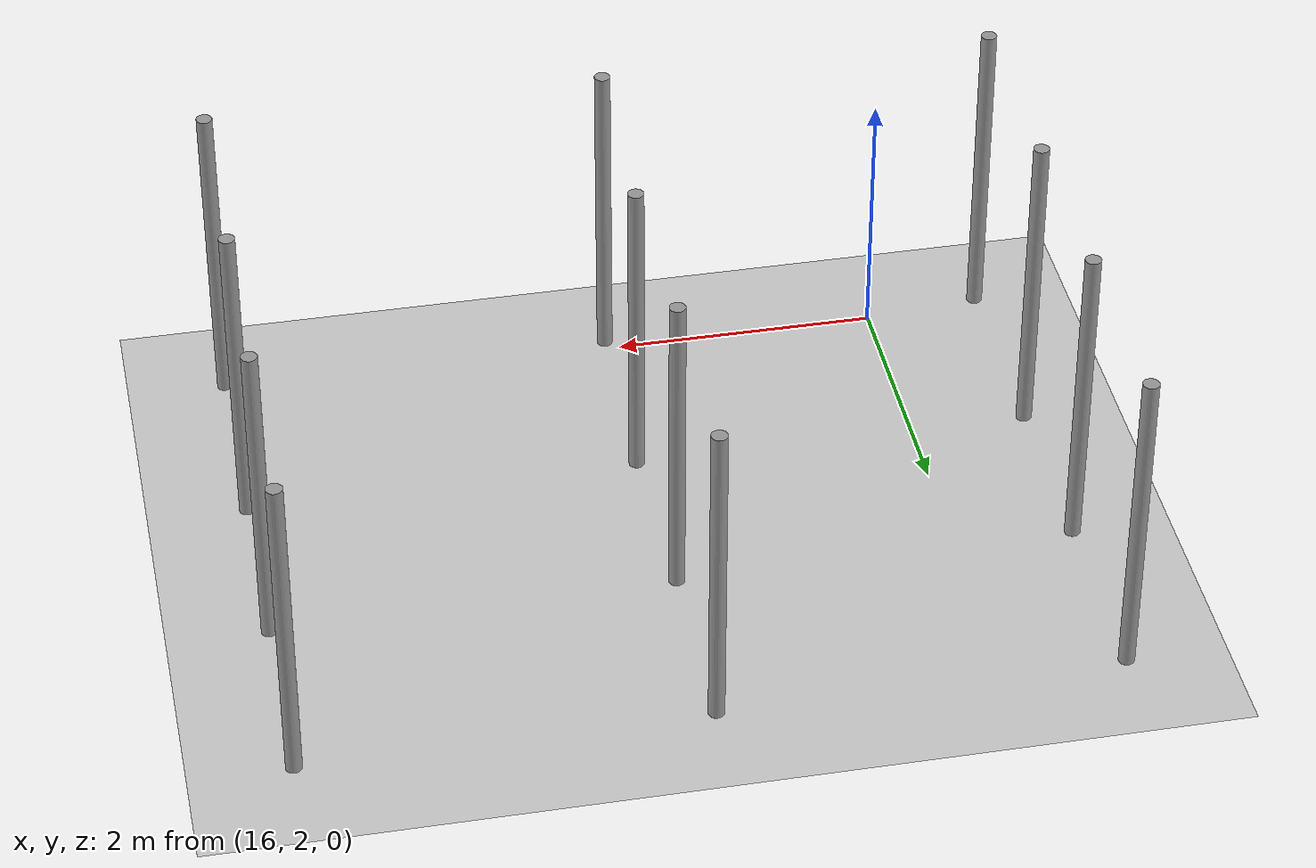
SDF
<sdf version="1.6">
 <world name="default">
  <model name="ground_plane">
   <static>1</static>
   <link name="link">
    <collision name="collision">
     <geometry><plane><normal>0 0 1</normal><size>100 100</size></plane></geometry>
     <surface><friction><ode><mu>100</mu><mu2>50</mu2></ode></friction></surface>
    </collision>
    <visual name="visual">
     <cast_shadows>0</cast_shadows>
     <geometry><plane><normal>0 0 1</normal><size>100 100</size></plane></geometry>
     <material>
      <script><uri>file://media/materials/scripts/gazebo.material</uri><name>Gazebo/Grey</name></script>
     </material>
    </visual>
   </link>
  </model>
  <model name="pole_11">
   <link name="link_0">
    <inertial>
     <mass>0.0364582</mass>
     <inertia>
      <ixx>0.00312124</ixx>
      <ixy>0</ixy>
      <ixz>0</ixz>
      <iyy>0.00312124</iyy>
      <iyz>0</iyz>
      <izz>0.00016615</izz>
     </inertia>
    </inertial>
    <visual name="visual">
     <geometry><cylinder><radius>0.06</radius><length>2.5</length></cylinder></geometry>
     <material>
      <lighting>1</lighting>
      <script><uri>file://media/materials/scripts/gazebo.material</uri><name>Gazebo/Grey</name></script>
      <ambient>0.3 0.3 0.3 1</ambient>
      <diffuse>0.7 0.7 0.7 1</diffuse>
      <specular>0.01 0.01 0.01 1</specular>
      <emissive>0 0 0 1</emissive>
      <shader type="vertex"><normal_map>__default__</normal_map></shader>
     </material>
    </visual>
    <collision name="collision">
     <geometry><cylinder><radius>0.06</radius><length>2.5</length></cylinder></geometry>
     <surface>
      <friction>
       <ode><mu>1</mu><mu2>1</mu2><fdir1>0 0 0</fdir1><slip1>0</slip1><slip2>0</slip2></ode>
       <torsional>
        <coefficient>1</coefficient>
        <patch_radius>0</patch_radius>
        <surface_radius>0</surface_radius>
        <use_patch_radius>1</use_patch_radius>
        <ode><slip>0</slip></ode>
       </torsional>
      </friction>
      <bounce><restitution_coefficient>0</restitution_coefficient><threshold>1e+06</threshold></bounce>
      <contact>
       <collide_without_contact>0</collide_without_contact>
       <collide_without_contact_bitmask>1</collide_without_contact_bitmask>
       <collide_bitmask>1</collide_bitmask>
       <ode>
        <soft_cfm>0</soft_cfm>
        <soft_erp>0.2</soft_erp>
        <kp>1e+13</kp>
        <kd>1</kd>
        <max_vel>0.01</max_vel>
        <min_depth>0</min_depth>
       </ode>
       <bullet>
        <split_impulse>1</split_impulse>
        <split_impulse_penetration_threshold>-0.01</split_impulse_penetration_threshold>
        <soft_cfm>0</soft_cfm>
        <soft_erp>0.2</soft_erp>
        <kp>1e+13</kp>
        <kd>1</kd>
       </bullet>
      </contact>
     </surface>
    </collision>
   </link>
   <static>0</static>
   <pose>15.1065 1.89884 1.24999 -1e-06 -1e-06 -0.019088</pose>
  </model>
  <model name="pole_12">
   <link name="link_0">
    <inertial>
     <mass>0.0364582</mass>
     <inertia>
      <ixx>0.00312124</ixx>
      <ixy>0</ixy>
      <ixz>0</ixz>
      <iyy>0.00312124</iyy>
      <iyz>0</iyz>
      <izz>0.00016615</izz>
     </inertia>
    </inertial>
    <visual name="visual">
     <geometry><cylinder><radius>0.06</radius><length>2.5</length></cylinder></geometry>
     <material>
      <lighting>1</lighting>
      <script><uri>file://media/materials/scripts/gazebo.material</uri><name>Gazebo/Grey</name></script>
      <ambient>0.3 0.3 0.3 1</ambient>
      <diffuse>0.7 0.7 0.7 1</diffuse>
      <specular>0.01 0.01 0.01 1</specular>
      <emissive>0 0 0 1</emissive>
      <shader type="vertex"><normal_map>__default__</normal_map></shader>
     </material>
    </visual>
    <collision name="collision">
     <geometry><cylinder><radius>0.06</radius><length>2.5</length></cylinder></geometry>
     <surface>
      <friction>
       <ode><mu>1</mu><mu2>1</mu2><fdir1>0 0 0</fdir1><slip1>0</slip1><slip2>0</slip2></ode>
       <torsional>
        <coefficient>1</coefficient>
        <patch_radius>0</patch_radius>
        <surface_radius>0</surface_radius>
        <use_patch_radius>1</use_patch_radius>
        <ode><slip>0</slip></ode>
       </torsional>
      </friction>
      <bounce><restitution_coefficient>0</restitution_coefficient><threshold>1e+06</threshold></bounce>
      <contact>
       <collide_without_contact>0</collide_without_contact>
       <collide_without_contact_bitmask>1</collide_without_contact_bitmask>
       <collide_bitmask>1</collide_bitmask>
       <ode>
        <soft_cfm>0</soft_cfm>
        <soft_erp>0.2</soft_erp>
        <kp>1e+13</kp>
        <kd>1</kd>
        <max_vel>0.01</max_vel>
        <min_depth>0</min_depth>
       </ode>
       <bullet>
        <split_impulse>1</split_impulse>
        <split_impulse_penetration_threshold>-0.01</split_impulse_penetration_threshold>
        <soft_cfm>0</soft_cfm>
        <soft_erp>0.2</soft_erp>
        <kp>1e+13</kp>
        <kd>1</kd>
       </bullet>
      </contact>
     </surface>
    </collision>
   </link>
   <static>0</static>
   <pose>18.1066 1.89884 1.24999 -1e-06 1e-06 -0.02323</pose>
  </model>
  <model name="pole_13">
   <link name="link_0">
    <inertial>
     <mass>0.0364582</mass>
     <inertia>
      <ixx>0.00312124</ixx>
      <ixy>0</ixy>
      <ixz>0</ixz>
      <iyy>0.00312124</iyy>
      <iyz>0</iyz>
      <izz>0.00016615</izz>
     </inertia>
    </inertial>
    <visual name="visual">
     <geometry><cylinder><radius>0.06</radius><length>2.5</length></cylinder></geometry>
     <material>
      <lighting>1</lighting>
      <script><uri>file://media/materials/scripts/gazebo.material</uri><name>Gazebo/Grey</name></script>
      <ambient>0.3 0.3 0.3 1</ambient>
      <diffuse>0.7 0.7 0.7 1</diffuse>
      <specular>0.01 0.01 0.01 1</specular>
      <emissive>0 0 0 1</emissive>
      <shader type="vertex"><normal_map>__default__</normal_map></shader>
     </material>
    </visual>
    <collision name="collision">
     <geometry><cylinder><radius>0.06</radius><length>2.5</length></cylinder></geometry>
     <surface>
      <friction>
       <ode><mu>1</mu><mu2>1</mu2><fdir1>0 0 0</fdir1><slip1>0</slip1><slip2>0</slip2></ode>
       <torsional>
        <coefficient>1</coefficient>
        <patch_radius>0</patch_radius>
        <surface_radius>0</surface_radius>
        <use_patch_radius>1</use_patch_radius>
        <ode><slip>0</slip></ode>
       </torsional>
      </friction>
      <bounce><restitution_coefficient>0</restitution_coefficient><threshold>1e+06</threshold></bounce>
      <contact>
       <collide_without_contact>0</collide_without_contact>
       <collide_without_contact_bitmask>1</collide_without_contact_bitmask>
       <collide_bitmask>1</collide_bitmask>
       <ode>
        <soft_cfm>0</soft_cfm>
        <soft_erp>0.2</soft_erp>
        <kp>1e+13</kp>
        <kd>1</kd>
        <max_vel>0.01</max_vel>
        <min_depth>0</min_depth>
       </ode>
       <bullet>
        <split_impulse>1</split_impulse>
        <split_impulse_penetration_threshold>-0.01</split_impulse_penetration_threshold>
        <soft_cfm>0</soft_cfm>
        <soft_erp>0.2</soft_erp>
        <kp>1e+13</kp>
        <kd>1</kd>
       </bullet>
      </contact>
     </surface>
    </collision>
   </link>
   <static>0</static>
   <pose>21.1066 1.89914 1.25 -1e-06 1e-06 -0.021789</pose>
  </model>
  <model name="pole_14">
   <link name="link_0">
    <inertial>
     <mass>0.0364582</mass>
     <inertia>
      <ixx>0.00312124</ixx>
      <ixy>0</ixy>
      <ixz>0</ixz>
      <iyy>0.00312124</iyy>
      <iyz>0</iyz>
      <izz>0.00016615</izz>
     </inertia>
    </inertial>
    <visual name="visual">
     <geometry><cylinder><radius>0.06</radius><length>2.5</length></cylinder></geometry>
     <material>
      <lighting>1</lighting>
      <script><uri>file://media/materials/scripts/gazebo.material</uri><name>Gazebo/Grey</name></script>
      <ambient>0.3 0.3 0.3 1</ambient>
      <diffuse>0.7 0.7 0.7 1</diffuse>
      <specular>0.01 0.01 0.01 1</specular>
      <emissive>0 0 0 1</emissive>
      <shader type="vertex"><normal_map>__default__</normal_map></shader>
     </material>
    </visual>
    <collision name="collision">
     <geometry><cylinder><radius>0.06</radius><length>2.5</length></cylinder></geometry>
     <surface>
      <friction>
       <ode><mu>1</mu><mu2>1</mu2><fdir1>0 0 0</fdir1><slip1>0</slip1><slip2>0</slip2></ode>
       <torsional>
        <coefficient>1</coefficient>
        <patch_radius>0</patch_radius>
        <surface_radius>0</surface_radius>
        <use_patch_radius>1</use_patch_radius>
        <ode><slip>0</slip></ode>
       </torsional>
      </friction>
      <bounce><restitution_coefficient>0</restitution_coefficient><threshold>1e+06</threshold></bounce>
      <contact>
       <collide_without_contact>0</collide_without_contact>
       <collide_without_contact_bitmask>1</collide_without_contact_bitmask>
       <collide_bitmask>1</collide_bitmask>
       <ode>
        <soft_cfm>0</soft_cfm>
        <soft_erp>0.2</soft_erp>
        <kp>1e+13</kp>
        <kd>1</kd>
        <max_vel>0.01</max_vel>
        <min_depth>0</min_depth>
       </ode>
       <bullet>
        <split_impulse>1</split_impulse>
        <split_impulse_penetration_threshold>-0.01</split_impulse_penetration_threshold>
        <soft_cfm>0</soft_cfm>
        <soft_erp>0.2</soft_erp>
        <kp>1e+13</kp>
        <kd>1</kd>
       </bullet>
      </contact>
     </surface>
    </collision>
   </link>
   <static>0</static>
   <pose>15.1066 3.44508 1.25 -1e-06 -1e-06 0.004185</pose>
  </model>
  <model name="pole_15">
   <link name="link_0">
    <inertial>
     <mass>0.0364582</mass>
     <inertia>
      <ixx>0.00312124</ixx>
      <ixy>0</ixy>
      <ixz>0</ixz>
      <iyy>0.00312124</iyy>
      <iyz>0</iyz>
      <izz>0.00016615</izz>
     </inertia>
    </inertial>
    <visual name="visual">
     <geometry><cylinder><radius>0.06</radius><length>2.5</length></cylinder></geometry>
     <material>
      <lighting>1</lighting>
      <script><uri>file://media/materials/scripts/gazebo.material</uri><name>Gazebo/Grey</name></script>
      <ambient>0.3 0.3 0.3 1</ambient>
      <diffuse>0.7 0.7 0.7 1</diffuse>
      <specular>0.01 0.01 0.01 1</specular>
      <emissive>0 0 0 1</emissive>
      <shader type="vertex"><normal_map>__default__</normal_map></shader>
     </material>
    </visual>
    <collision name="collision">
     <geometry><cylinder><radius>0.06</radius><length>2.5</length></cylinder></geometry>
     <surface>
      <friction>
       <ode><mu>1</mu><mu2>1</mu2><fdir1>0 0 0</fdir1><slip1>0</slip1><slip2>0</slip2></ode>
       <torsional>
        <coefficient>1</coefficient>
        <patch_radius>0</patch_radius>
        <surface_radius>0</surface_radius>
        <use_patch_radius>1</use_patch_radius>
        <ode><slip>0</slip></ode>
       </torsional>
      </friction>
      <bounce><restitution_coefficient>0</restitution_coefficient><threshold>1e+06</threshold></bounce>
      <contact>
       <collide_without_contact>0</collide_without_contact>
       <collide_without_contact_bitmask>1</collide_without_contact_bitmask>
       <collide_bitmask>1</collide_bitmask>
       <ode>
        <soft_cfm>0</soft_cfm>
        <soft_erp>0.2</soft_erp>
        <kp>1e+13</kp>
        <kd>1</kd>
        <max_vel>0.01</max_vel>
        <min_depth>0</min_depth>
       </ode>
       <bullet>
        <split_impulse>1</split_impulse>
        <split_impulse_penetration_threshold>-0.01</split_impulse_penetration_threshold>
        <soft_cfm>0</soft_cfm>
        <soft_erp>0.2</soft_erp>
        <kp>1e+13</kp>
        <kd>1</kd>
       </bullet>
      </contact>
     </surface>
    </collision>
   </link>
   <static>0</static>
   <pose>18.1394 3.44509 1.24999 0 -1e-06 0.066988</pose>
  </model>
  <model name="pole_16">
   <link name="link_0">
    <inertial>
     <mass>0.0364582</mass>
     <inertia>
      <ixx>0.00312124</ixx>
      <ixy>0</ixy>
      <ixz>0</ixz>
      <iyy>0.00312124</iyy>
      <iyz>0</iyz>
      <izz>0.00016615</izz>
     </inertia>
    </inertial>
    <visual name="visual">
     <geometry><cylinder><radius>0.06</radius><length>2.5</length></cylinder></geometry>
     <material>
      <lighting>1</lighting>
      <script><uri>file://media/materials/scripts/gazebo.material</uri><name>Gazebo/Grey</name></script>
      <ambient>0.3 0.3 0.3 1</ambient>
      <diffuse>0.7 0.7 0.7 1</diffuse>
      <specular>0.01 0.01 0.01 1</specular>
      <emissive>0 0 0 1</emissive>
      <shader type="vertex"><normal_map>__default__</normal_map></shader>
     </material>
    </visual>
    <collision name="collision">
     <geometry><cylinder><radius>0.06</radius><length>2.5</length></cylinder></geometry>
     <surface>
      <friction>
       <ode><mu>1</mu><mu2>1</mu2><fdir1>0 0 0</fdir1><slip1>0</slip1><slip2>0</slip2></ode>
       <torsional>
        <coefficient>1</coefficient>
        <patch_radius>0</patch_radius>
        <surface_radius>0</surface_radius>
        <use_patch_radius>1</use_patch_radius>
        <ode><slip>0</slip></ode>
       </torsional>
      </friction>
      <bounce><restitution_coefficient>0</restitution_coefficient><threshold>1e+06</threshold></bounce>
      <contact>
       <collide_without_contact>0</collide_without_contact>
       <collide_without_contact_bitmask>1</collide_without_contact_bitmask>
       <collide_bitmask>1</collide_bitmask>
       <ode>
        <soft_cfm>0</soft_cfm>
        <soft_erp>0.2</soft_erp>
        <kp>1e+13</kp>
        <kd>1</kd>
        <max_vel>0.01</max_vel>
        <min_depth>0</min_depth>
       </ode>
       <bullet>
        <split_impulse>1</split_impulse>
        <split_impulse_penetration_threshold>-0.01</split_impulse_penetration_threshold>
        <soft_cfm>0</soft_cfm>
        <soft_erp>0.2</soft_erp>
        <kp>1e+13</kp>
        <kd>1</kd>
       </bullet>
      </contact>
     </surface>
    </collision>
   </link>
   <static>0</static>
   <pose>21.1076 3.4451 1.24999 -1e-06 -0 0.049444</pose>
  </model>
  <model name="pole_17">
   <link name="link_0">
    <inertial>
     <mass>0.0364582</mass>
     <inertia>
      <ixx>0.00312124</ixx>
      <ixy>0</ixy>
      <ixz>0</ixz>
      <iyy>0.00312124</iyy>
      <iyz>0</iyz>
      <izz>0.00016615</izz>
     </inertia>
    </inertial>
    <visual name="visual">
     <geometry><cylinder><radius>0.06</radius><length>2.5</length></cylinder></geometry>
     <material>
      <lighting>1</lighting>
      <script><uri>file://media/materials/scripts/gazebo.material</uri><name>Gazebo/Grey</name></script>
      <ambient>0.3 0.3 0.3 1</ambient>
      <diffuse>0.7 0.7 0.7 1</diffuse>
      <specular>0.01 0.01 0.01 1</specular>
      <emissive>0 0 0 1</emissive>
      <shader type="vertex"><normal_map>__default__</normal_map></shader>
     </material>
    </visual>
    <collision name="collision">
     <geometry><cylinder><radius>0.06</radius><length>2.5</length></cylinder></geometry>
     <surface>
      <friction>
       <ode><mu>1</mu><mu2>1</mu2><fdir1>0 0 0</fdir1><slip1>0</slip1><slip2>0</slip2></ode>
       <torsional>
        <coefficient>1</coefficient>
        <patch_radius>0</patch_radius>
        <surface_radius>0</surface_radius>
        <use_patch_radius>1</use_patch_radius>
        <ode><slip>0</slip></ode>
       </torsional>
      </friction>
      <bounce><restitution_coefficient>0</restitution_coefficient><threshold>1e+06</threshold></bounce>
      <contact>
       <collide_without_contact>0</collide_without_contact>
       <collide_without_contact_bitmask>1</collide_without_contact_bitmask>
       <collide_bitmask>1</collide_bitmask>
       <ode>
        <soft_cfm>0</soft_cfm>
        <soft_erp>0.2</soft_erp>
        <kp>1e+13</kp>
        <kd>1</kd>
        <max_vel>0.01</max_vel>
        <min_depth>0</min_depth>
       </ode>
       <bullet>
        <split_impulse>1</split_impulse>
        <split_impulse_penetration_threshold>-0.01</split_impulse_penetration_threshold>
        <soft_cfm>0</soft_cfm>
        <soft_erp>0.2</soft_erp>
        <kp>1e+13</kp>
        <kd>1</kd>
       </bullet>
      </contact>
     </surface>
    </collision>
   </link>
   <static>0</static>
   <pose>15.1065 4.85418 1.24999 -1e-06 1e-06 -0.022477</pose>
  </model>
  <model name="pole_18">
   <link name="link_0">
    <inertial>
     <mass>0.0364582</mass>
     <inertia>
      <ixx>0.00312124</ixx>
      <ixy>0</ixy>
      <ixz>0</ixz>
      <iyy>0.00312124</iyy>
      <iyz>0</iyz>
      <izz>0.00016615</izz>
     </inertia>
    </inertial>
    <visual name="visual">
     <geometry><cylinder><radius>0.06</radius><length>2.5</length></cylinder></geometry>
     <material>
      <lighting>1</lighting>
      <script><uri>file://media/materials/scripts/gazebo.material</uri><name>Gazebo/Grey</name></script>
      <ambient>0.3 0.3 0.3 1</ambient>
      <diffuse>0.7 0.7 0.7 1</diffuse>
      <specular>0.01 0.01 0.01 1</specular>
      <emissive>0 0 0 1</emissive>
      <shader type="vertex"><normal_map>__default__</normal_map></shader>
     </material>
    </visual>
    <collision name="collision">
     <geometry><cylinder><radius>0.06</radius><length>2.5</length></cylinder></geometry>
     <surface>
      <friction>
       <ode><mu>1</mu><mu2>1</mu2><fdir1>0 0 0</fdir1><slip1>0</slip1><slip2>0</slip2></ode>
       <torsional>
        <coefficient>1</coefficient>
        <patch_radius>0</patch_radius>
        <surface_radius>0</surface_radius>
        <use_patch_radius>1</use_patch_radius>
        <ode><slip>0</slip></ode>
       </torsional>
      </friction>
      <bounce><restitution_coefficient>0</restitution_coefficient><threshold>1e+06</threshold></bounce>
      <contact>
       <collide_without_contact>0</collide_without_contact>
       <collide_without_contact_bitmask>1</collide_without_contact_bitmask>
       <collide_bitmask>1</collide_bitmask>
       <ode>
        <soft_cfm>0</soft_cfm>
        <soft_erp>0.2</soft_erp>
        <kp>1e+13</kp>
        <kd>1</kd>
        <max_vel>0.01</max_vel>
        <min_depth>0</min_depth>
       </ode>
       <bullet>
        <split_impulse>1</split_impulse>
        <split_impulse_penetration_threshold>-0.01</split_impulse_penetration_threshold>
        <soft_cfm>0</soft_cfm>
        <soft_erp>0.2</soft_erp>
        <kp>1e+13</kp>
        <kd>1</kd>
       </bullet>
      </contact>
     </surface>
    </collision>
   </link>
   <static>0</static>
   <pose>18.1065 4.85419 1.25 -1e-06 -0 -0.025507</pose>
  </model>
  <model name="pole_19">
   <link name="link_0">
    <inertial>
     <mass>0.0364582</mass>
     <inertia>
      <ixx>0.00312124</ixx>
      <ixy>0</ixy>
      <ixz>0</ixz>
      <iyy>0.00312124</iyy>
      <iyz>0</iyz>
      <izz>0.00016615</izz>
     </inertia>
    </inertial>
    <visual name="visual">
     <geometry><cylinder><radius>0.06</radius><length>2.5</length></cylinder></geometry>
     <material>
      <lighting>1</lighting>
      <script><uri>file://media/materials/scripts/gazebo.material</uri><name>Gazebo/Grey</name></script>
      <ambient>0.3 0.3 0.3 1</ambient>
      <diffuse>0.7 0.7 0.7 1</diffuse>
      <specular>0.01 0.01 0.01 1</specular>
      <emissive>0 0 0 1</emissive>
      <shader type="vertex"><normal_map>__default__</normal_map></shader>
     </material>
    </visual>
    <collision name="collision">
     <geometry><cylinder><radius>0.06</radius><length>2.5</length></cylinder></geometry>
     <surface>
      <friction>
       <ode><mu>1</mu><mu2>1</mu2><fdir1>0 0 0</fdir1><slip1>0</slip1><slip2>0</slip2></ode>
       <torsional>
        <coefficient>1</coefficient>
        <patch_radius>0</patch_radius>
        <surface_radius>0</surface_radius>
        <use_patch_radius>1</use_patch_radius>
        <ode><slip>0</slip></ode>
       </torsional>
      </friction>
      <bounce><restitution_coefficient>0</restitution_coefficient><threshold>1e+06</threshold></bounce>
      <contact>
       <collide_without_contact>0</collide_without_contact>
       <collide_without_contact_bitmask>1</collide_without_contact_bitmask>
       <collide_bitmask>1</collide_bitmask>
       <ode>
        <soft_cfm>0</soft_cfm>
        <soft_erp>0.2</soft_erp>
        <kp>1e+13</kp>
        <kd>1</kd>
        <max_vel>0.01</max_vel>
        <min_depth>0</min_depth>
       </ode>
       <bullet>
        <split_impulse>1</split_impulse>
        <split_impulse_penetration_threshold>-0.01</split_impulse_penetration_threshold>
        <soft_cfm>0</soft_cfm>
        <soft_erp>0.2</soft_erp>
        <kp>1e+13</kp>
        <kd>1</kd>
       </bullet>
      </contact>
     </surface>
    </collision>
   </link>
   <static>0</static>
   <pose>21.1066 4.8541 1.24999 -0 -1e-06 -0.289372</pose>
  </model>
  <model name="pole_20">
   <link name="link_0">
    <inertial>
     <mass>0.0364582</mass>
     <inertia>
      <ixx>0.00312124</ixx>
      <ixy>0</ixy>
      <ixz>0</ixz>
      <iyy>0.00312124</iyy>
      <iyz>0</iyz>
      <izz>0.00016615</izz>
     </inertia>
    </inertial>
    <visual name="visual">
     <geometry><cylinder><radius>0.06</radius><length>2.5</length></cylinder></geometry>
     <material>
      <lighting>1</lighting>
      <script><uri>file://media/materials/scripts/gazebo.material</uri><name>Gazebo/Grey</name></script>
      <ambient>0.3 0.3 0.3 1</ambient>
      <diffuse>0.7 0.7 0.7 1</diffuse>
      <specular>0.01 0.01 0.01 1</specular>
      <emissive>0 0 0 1</emissive>
      <shader type="vertex"><normal_map>__default__</normal_map></shader>
     </material>
    </visual>
    <collision name="collision">
     <geometry><cylinder><radius>0.06</radius><length>2.5</length></cylinder></geometry>
     <surface>
      <friction>
       <ode><mu>1</mu><mu2>1</mu2><fdir1>0 0 0</fdir1><slip1>0</slip1><slip2>0</slip2></ode>
       <torsional>
        <coefficient>1</coefficient>
        <patch_radius>0</patch_radius>
        <surface_radius>0</surface_radius>
        <use_patch_radius>1</use_patch_radius>
        <ode><slip>0</slip></ode>
       </torsional>
      </friction>
      <bounce><restitution_coefficient>0</restitution_coefficient><threshold>1e+06</threshold></bounce>
      <contact>
       <collide_without_contact>0</collide_without_contact>
       <collide_without_contact_bitmask>1</collide_without_contact_bitmask>
       <collide_bitmask>1</collide_bitmask>
       <ode>
        <soft_cfm>0</soft_cfm>
        <soft_erp>0.2</soft_erp>
        <kp>1e+13</kp>
        <kd>1</kd>
        <max_vel>0.01</max_vel>
        <min_depth>0</min_depth>
       </ode>
       <bullet>
        <split_impulse>1</split_impulse>
        <split_impulse_penetration_threshold>-0.01</split_impulse_penetration_threshold>
        <soft_cfm>0</soft_cfm>
        <soft_erp>0.2</soft_erp>
        <kp>1e+13</kp>
        <kd>1</kd>
       </bullet>
      </contact>
     </surface>
    </collision>
   </link>
   <static>0</static>
   <pose>15.1066 6.3171 1.24999 0 0 -0.022868</pose>
  </model>
  <model name="pole_21">
   <link name="link_0">
    <inertial>
     <mass>0.0364582</mass>
     <inertia>
      <ixx>0.00312124</ixx>
      <ixy>0</ixy>
      <ixz>0</ixz>
      <iyy>0.00312124</iyy>
      <iyz>0</iyz>
      <izz>0.00016615</izz>
     </inertia>
    </inertial>
    <visual name="visual">
     <geometry><cylinder><radius>0.06</radius><length>2.5</length></cylinder></geometry>
     <material>
      <lighting>1</lighting>
      <script><uri>file://media/materials/scripts/gazebo.material</uri><name>Gazebo/Grey</name></script>
      <ambient>0.3 0.3 0.3 1</ambient>
      <diffuse>0.7 0.7 0.7 1</diffuse>
      <specular>0.01 0.01 0.01 1</specular>
      <emissive>0 0 0 1</emissive>
      <shader type="vertex"><normal_map>__default__</normal_map></shader>
     </material>
    </visual>
    <collision name="collision">
     <geometry><cylinder><radius>0.06</radius><length>2.5</length></cylinder></geometry>
     <surface>
      <friction>
       <ode><mu>1</mu><mu2>1</mu2><fdir1>0 0 0</fdir1><slip1>0</slip1><slip2>0</slip2></ode>
       <torsional>
        <coefficient>1</coefficient>
        <patch_radius>0</patch_radius>
        <surface_radius>0</surface_radius>
        <use_patch_radius>1</use_patch_radius>
        <ode><slip>0</slip></ode>
       </torsional>
      </friction>
      <bounce><restitution_coefficient>0</restitution_coefficient><threshold>1e+06</threshold></bounce>
      <contact>
       <collide_without_contact>0</collide_without_contact>
       <collide_without_contact_bitmask>1</collide_without_contact_bitmask>
       <collide_bitmask>1</collide_bitmask>
       <ode>
        <soft_cfm>0</soft_cfm>
        <soft_erp>0.2</soft_erp>
        <kp>1e+13</kp>
        <kd>1</kd>
        <max_vel>0.01</max_vel>
        <min_depth>0</min_depth>
       </ode>
       <bullet>
        <split_impulse>1</split_impulse>
        <split_impulse_penetration_threshold>-0.01</split_impulse_penetration_threshold>
        <soft_cfm>0</soft_cfm>
        <soft_erp>0.2</soft_erp>
        <kp>1e+13</kp>
        <kd>1</kd>
       </bullet>
      </contact>
     </surface>
    </collision>
   </link>
   <static>0</static>
   <pose>18.1066 6.31693 1.25 0 -1e-06 -0.022986</pose>
  </model>
  <model name="pole_22">
   <link name="link_0">
    <inertial>
     <mass>0.0364582</mass>
     <inertia>
      <ixx>0.00312124</ixx>
      <ixy>0</ixy>
      <ixz>0</ixz>
      <iyy>0.00312124</iyy>
      <iyz>0</iyz>
      <izz>0.00016615</izz>
     </inertia>
    </inertial>
    <visual name="visual">
     <geometry><cylinder><radius>0.06</radius><length>2.5</length></cylinder></geometry>
     <material>
      <lighting>1</lighting>
      <script><uri>file://media/materials/scripts/gazebo.material</uri><name>Gazebo/Grey</name></script>
      <ambient>0.3 0.3 0.3 1</ambient>
      <diffuse>0.7 0.7 0.7 1</diffuse>
      <specular>0.01 0.01 0.01 1</specular>
      <emissive>0 0 0 1</emissive>
      <shader type="vertex"><normal_map>__default__</normal_map></shader>
     </material>
    </visual>
    <collision name="collision">
     <geometry><cylinder><radius>0.06</radius><length>2.5</length></cylinder></geometry>
     <surface>
      <friction>
       <ode><mu>1</mu><mu2>1</mu2><fdir1>0 0 0</fdir1><slip1>0</slip1><slip2>0</slip2></ode>
       <torsional>
        <coefficient>1</coefficient>
        <patch_radius>0</patch_radius>
        <surface_radius>0</surface_radius>
        <use_patch_radius>1</use_patch_radius>
        <ode><slip>0</slip></ode>
       </torsional>
      </friction>
      <bounce><restitution_coefficient>0</restitution_coefficient><threshold>1e+06</threshold></bounce>
      <contact>
       <collide_without_contact>0</collide_without_contact>
       <collide_without_contact_bitmask>1</collide_without_contact_bitmask>
       <collide_bitmask>1</collide_bitmask>
       <ode>
        <soft_cfm>0</soft_cfm>
        <soft_erp>0.2</soft_erp>
        <kp>1e+13</kp>
        <kd>1</kd>
        <max_vel>0.01</max_vel>
        <min_depth>0</min_depth>
       </ode>
       <bullet>
        <split_impulse>1</split_impulse>
        <split_impulse_penetration_threshold>-0.01</split_impulse_penetration_threshold>
        <soft_cfm>0</soft_cfm>
        <soft_erp>0.2</soft_erp>
        <kp>1e+13</kp>
        <kd>1</kd>
       </bullet>
      </contact>
     </surface>
    </collision>
   </link>
   <static>0</static>
   <pose>21.1065 6.31697 1.24999 1e-06 1e-06 -0.025163</pose>
  </model>
 </world>
</sdf>
